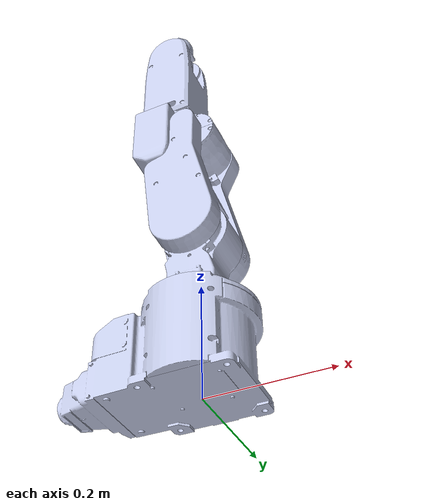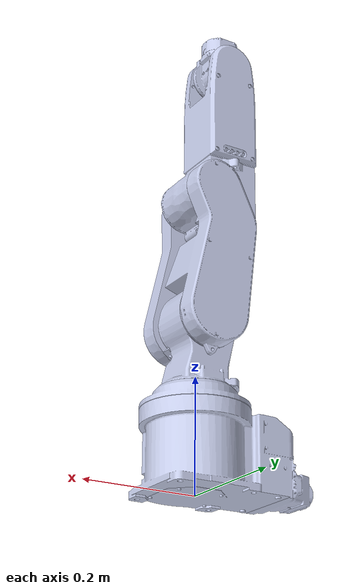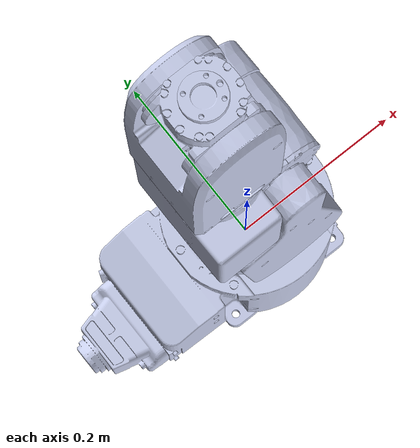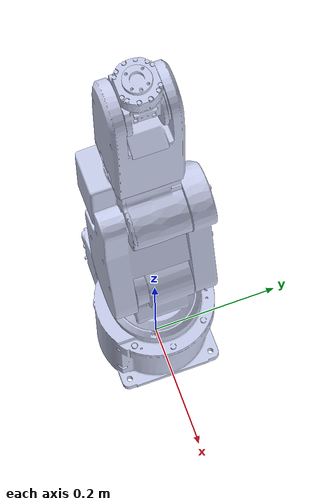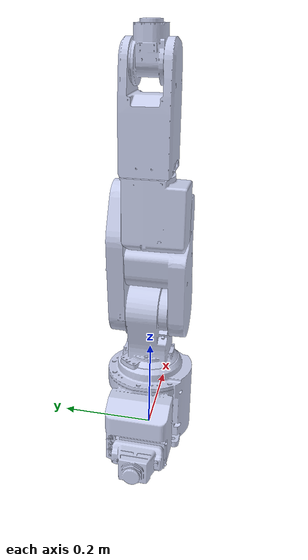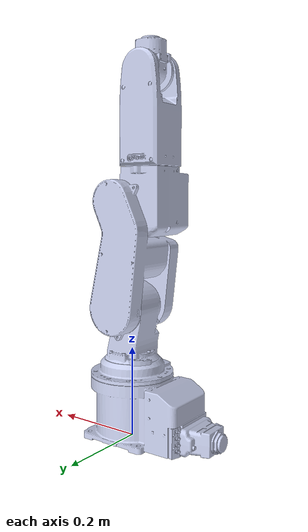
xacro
<?xml version="1.0"?>
<robot xmlns:xacro="http://www.ros.org/wiki/xacro" name="rv_2frb_d">

    <xacro:arg name="prefix" default="" />
    <xacro:arg name="use_sim" default="false" />
    <xacro:arg name="robot_ip" default="192.168.0.20" />
    <xacro:arg name="robot_udp_port" default="10000" />
    <xacro:arg name="robot" default="rv_2frb_d" />

    <xacro:include filename="$(find mitsubishi_ros2_description)/urdf/rv_2frb_d/rv_2frb_d.urdf.xacro" />
    <xacro:include filename="$(find rv_2frb_d_moveit_config)/config/rv_2frb_d.ros2_control.xacro" />

    <!-- Used for fixing robot -->
    <link name="world"/>
    <gazebo reference="world">
        <static>true</static>
    </gazebo>

    <xacro:rv_2frb_d parent="world" prefix="$(arg prefix)">
      <origin xyz="0 0 0" rpy="0 0 0" />
    </xacro:rv_2frb_d>

    <xacro:rv_2frb_d_ros2_control
        name="rv_2frb_d_ros_control"
        robot_ip="$(arg robot_ip)"
        prefix="$(arg prefix)"
        robot_udp_port="$(arg robot_udp_port)"
        use_sim="$(arg use_sim)" />

    <xacro:if value="$(arg use_sim)">
      <gazebo>
        <plugin filename="libgazebo_ros2_control.so" name="gazebo_ros2_control">
          <parameters>$(find rv_2frb_d_moveit_config)/config/rv_2frb_d_controllers.yaml</parameters>
        </plugin>
      </gazebo>
    </xacro:if>

</robot>

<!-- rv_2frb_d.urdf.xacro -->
<robot xmlns:xacro="http://www.ros.org/wiki/xacro">

  <xacro:macro name="rv_2frb_d" params="parent prefix *origin">

    <material name="housing">
      <color rgba="0.79216 0.81961 0.93333 1"/>
    </material>

    <link name="${prefix}rv_2frb_d_base_link">
      <inertial>
            <mass value="1"/>
            <inertia ixx="1.0" ixy="0.0" ixz="0.0" iyy="1.0" iyz="0.0" izz="1.0"/>
      </inertial>
      <visual>
        <origin xyz="0 0 0" rpy="1.57079633 0.00000000 3.14159265" />
        <geometry>
          <mesh filename="file://$(find mitsubishi_ros2_description)/meshes/rv_2frb_d/RV-2FR_01_base.stl"/>
        </geometry>
        <material name="housing"/>
      </visual>
      <collision>
        <origin xyz="0 0 0" rpy="1.57079633 0.00000000 3.14159265" />
        <geometry>
          <mesh filename="file://$(find mitsubishi_ros2_description)/meshes/rv_2frb_d/RV-2FR_01_base.stl"/>
        </geometry>
      </collision>
    </link>

    <link name="${prefix}link_1">
      <inertial>
          <mass value="1"/>
          <inertia ixx="1.0" ixy="0.0" ixz="0.0" iyy="1.0" iyz="0.0" izz="1.0"/>
      </inertial>
      <visual>
        <origin xyz="0 0 0" rpy="1.57079633 0.00000000 0.00000000" />
        <geometry>
          <mesh filename="file://$(find mitsubishi_ros2_description)/meshes/rv_2frb_d/RV-2FR_02_link1_Shoulder.stl" />
        </geometry>
        <material name="housing"/>
      </visual>
      <collision>
        <origin xyz="0 0 0" rpy="1.57079633 0.00000000 0.00000000" />
        <geometry>
          <mesh filename="file://$(find mitsubishi_ros2_description)/meshes/rv_2frb_d/RV-2FR_02_link1_Shoulder.stl" />
        </geometry>
      </collision>
    </link>

    <link name="${prefix}link_2">
      <inertial>
        <mass value="1"/>
        <inertia ixx="1.0" ixy="0.0" ixz="0.0" iyy="1.0" iyz="0.0" izz="1.0"/>
      </inertial>
      <visual>
        <origin xyz="0 -0.295 0" rpy="0.00000000 0.00000000 0.00000000" />
        <geometry>
          <mesh filename="file://$(find mitsubishi_ros2_description)/meshes/rv_2frb_d/RV-2FR_03_link2_No1Arm.stl" />
        </geometry>
        <material name="housing"/>
      </visual>
      <collision>
        <origin xyz="0 -0.295 0" rpy="0 0 0" />
        <geometry>
          <mesh filename="file://$(find mitsubishi_ros2_description)/meshes/rv_2frb_d/RV-2FR_03_link2_No1Arm.stl" />
        </geometry>
      </collision>
    </link>

    <link name="${prefix}link_3">
      <inertial>
        <mass value="1"/>
        <inertia ixx="1.0" ixy="0.0" ixz="0.0" iyy="1.0" iyz="0.0" izz="1.0"/>
      </inertial>
      <visual>
        <origin xyz="0 0 0" rpy="0.00000000 1.57079633 3.14159265" />
        <geometry>
          <mesh filename="file://$(find mitsubishi_ros2_description)/meshes/rv_2frb_d/RV-2FR_04_link3_Elbow.stl" />
        </geometry>
        <material name="housing"/>
      </visual>
      <collision>
        <origin xyz="0 0 0" rpy="0.00000000 1.57079633 3.14159265" />
        <geometry>
          <mesh filename="file://$(find mitsubishi_ros2_description)/meshes/rv_2frb_d/RV-2FR_04_link3_Elbow.stl" />
        </geometry>
      </collision>
    </link>

    <link name="${prefix}link_4">
      <inertial>
        <mass value="1"/>
        <inertia ixx="1.0" ixy="0.0" ixz="0.0" iyy="1.0" iyz="0.0" izz="1.0"/>
      </inertial>
      <visual>
        <origin xyz="-0.575 0 0" rpy="0 1.57079633 -1.57079633" />
        <geometry>
          <mesh filename="file://$(find mitsubishi_ros2_description)/meshes/rv_2frb_d/RV-2FR_05_link4_No2Arm.stl" />
        </geometry>
        <material name="housing"/>
      </visual>
      <collision>
        <origin xyz="-0.575 0 0" rpy="0 1.57079633 -1.57079633" />
        <geometry>
          <mesh filename="file://$(find mitsubishi_ros2_description)/meshes/rv_2frb_d/RV-2FR_05_link4_No2Arm.stl" />
        </geometry>
      </collision>
    </link>

    <link name="${prefix}link_5">
      <inertial>
        <mass value="1"/>
        <inertia ixx="1.0" ixy="0.0" ixz="0.0" iyy="1.0" iyz="0.0" izz="1.0"/>
      </inertial>
      <visual>
        <origin xyz="-0.575 -0.27 0" rpy="0 0 -1.57079633" />
        <geometry>
          <mesh filename="file://$(find mitsubishi_ros2_description)/meshes/rv_2frb_d/RV-2FR_06_link5_Wrist.stl" />
        </geometry>
        <material name="housing"/>
      </visual>
      <collision>
        <origin xyz="-0.575 -0.27 0" rpy="0 0 -1.57079633" />
        <geometry>
          <mesh filename="file://$(find mitsubishi_ros2_description)/meshes/rv_2frb_d/RV-2FR_06_link5_Wrist.stl" />
        </geometry>
      </collision>
    </link>

    <link name="${prefix}link_6">
      <inertial>
        <mass value="1"/>
        <inertia ixx="1.0" ixy="0.0" ixz="0.0" iyy="1.0" iyz="0.0" izz="1.0"/>
      </inertial>
      <visual>
        <origin xyz="0.575 0 -0.270" rpy="0 1.57079633 1.57079633" />
        <geometry>
          <mesh filename="file://$(find mitsubishi_ros2_description)/meshes/rv_2frb_d/RV-2FR_07_link6_Flange.stl" />
        </geometry>
        <material name="housing"/>
      </visual>
      <collision>
        <origin xyz="0.575 0 -0.270" rpy="0 1.57079633 1.57079633" />
        <geometry>
          <mesh filename="file://$(find mitsubishi_ros2_description)/meshes/rv_2frb_d/RV-2FR_07_link6_Flange.stl" />
        </geometry>
      </collision>
    </link>

    <link name="${prefix}tool0">
      <inertial>
        <mass value="1"/>
        <inertia ixx="1.0" ixy="0.0" ixz="0.0" iyy="1.0" iyz="0.0" izz="1.0"/>
      </inertial>
    </link>

    <joint name="${prefix}rv_2frb_d_base" type="fixed">
        <xacro:insert_block name="origin" />
        <parent link="${parent}"/>
        <child link="${prefix}rv_2frb_d_base_link"/>
    </joint>

    <joint name="${prefix}J1" type="revolute">
      <origin xyz="0 0 0" rpy="0 0 0" />
      <parent link="${prefix}rv_2frb_d_base_link" />
      <child link="${prefix}link_1" />
      <axis xyz="0 0 1" />
      <limit
        lower="-4.1887902" upper="4.1887902"
        velocity="1.57079633"
        acceleration="17453.29251994"
        jerk="17.45329252"
        effort="32.21000000" />
    </joint>

    <joint name="${prefix}J2" type="revolute">
      <origin xyz="0 0 0.295" rpy="1.57079633 0 3.14159265" />
      <parent link="${prefix}link_1" />
      <child link="${prefix}link_2" />
      <axis xyz="0 0 1" />
      <limit
        lower="-2.0943951" upper="2.0943951"
        velocity="1.57079633"
        acceleration="17453.29251994"
        jerk="17.45329252"
        effort="32.21000000" />
    </joint>

    <joint name="${prefix}J3" type="revolute">
      <origin xyz="0.000 0.230 0.000" rpy="0.00000000 0.00000000 0.00000000" />
      <parent link="${prefix}link_2" />
      <child link="${prefix}link_3" />
      <axis xyz="0 0 1" />
      <limit
        lower="0" upper="2.7925268"
        velocity="1.57079633"
        acceleration="17453.29251994"
        jerk="17.45329252"
        effort="32.21000000" />
    </joint>

    <joint name="${prefix}J4" type="revolute">
      <origin xyz="0.050 0.000 0.000" rpy="-1.57079633 0.00000000 0.00000000" />
      <parent link="${prefix}link_3" />
      <child link="${prefix}link_4" />
      <axis xyz="0 0 1" />
      <limit
        lower="-3.4906585" upper="3.4906585"
        velocity="1.57079633"
        acceleration="17453.29251994"
        jerk="17.45329252"
        effort="32.21000000" />
    </joint>

    <joint name="${prefix}J5" type="revolute">
      <origin xyz="0.000 0.000 0.270" rpy="1.57079633 0.00000000 0.00000000" />
      <parent link="${prefix}link_4" />
      <child link="${prefix}link_5" />
      <axis xyz="0 0 1" />
      <limit
        lower="-2.0943951" upper="2.0943951"
        velocity="1.57079633"
        acceleration="17453.29251994"
        jerk="17.45329252"
        effort="32.21000000" />
    </joint>

    <joint name="${prefix}J6" type="revolute">
      <origin xyz="0.000 0.000 0.000" rpy="-1.57079633 0.00000000 0.00000000" />
      <parent link="${prefix}link_5" />
      <child link="${prefix}link_6" />
      <axis xyz="0 0 1" />
      <limit
        lower="-6.28318531" upper="6.28318531"
        velocity="1.57079633"
        acceleration="17453.29251994"
        jerk="17.45329252"
        effort="32.21000000" />
    </joint>

    <joint name="${prefix}J6-tool0" type="fixed">
        <origin rpy="0 0 0" xyz="0 0 0"/>
        <parent link="${prefix}link_6"/>
        <child link="${prefix}tool0"/>
    </joint>

  </xacro:macro>
</robot>
